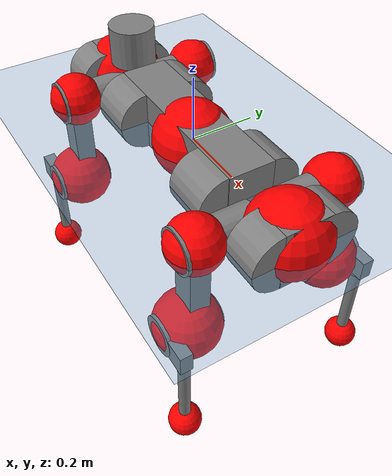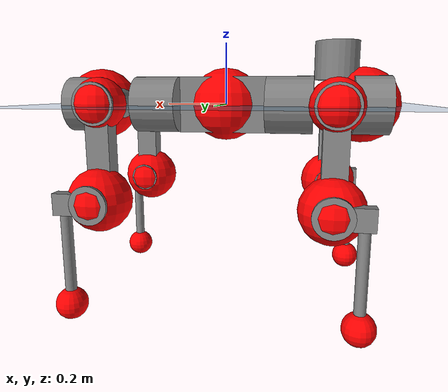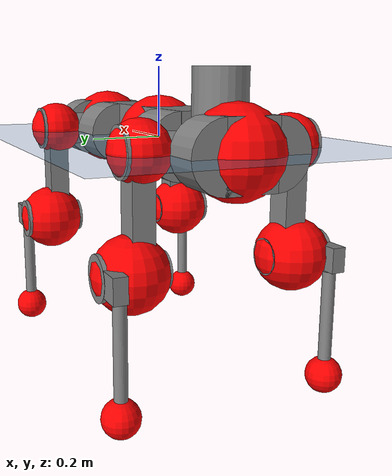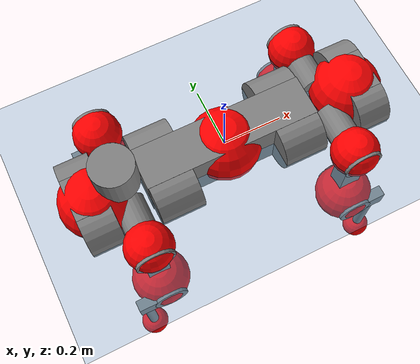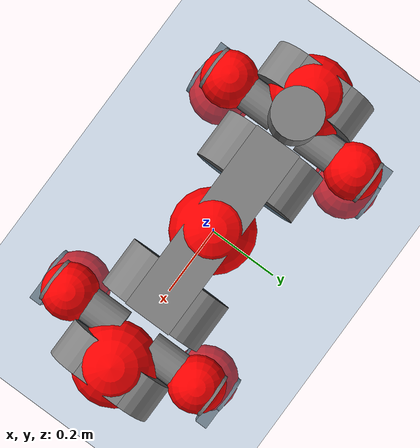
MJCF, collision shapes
<mujoco model="anymal_c">
  <compiler angle="radian" assetdir="assets" balanceinertia="true" inertiafromgeom="false"/>

  <option timestep="0.005" density="1.2" viscosity="2e-05"/>

  <size nkey="1"/>

  <visual>
    <quality shadowsize="8192"/>
    <map shadowclip="0.5"/>
  </visual>

  <default>
    <default class="/">
      <material specular="0" shininess="0.25"/>
      <geom contype="0" conaffinity="0" group="1" solref="-1000 -80"/>
      <site size="0.01 0.005 0.005" group="5"/>
      <general forcelimited="true" forcerange="-80 80" biastype="affine" gainprm="80" biasprm="0 -80 -2"/>
      <default class="anymal_c">
        <joint armature="0.01" damping="0.01" frictionloss="0.1"/>
        <default class="visual">
          <geom type="mesh" group="2"/>
          <default class="visual_zflip"/>
        </default>
        <default class="collision">
          <geom type="cylinder" group="3"/>
          <default class="foot">
            <geom size="0.03 0 0" type="sphere" condim="6" priority="1" friction="0.8 0.02 0.01" solimp="0.015 1 0.03"/>
          </default>
        </default>
      </default>
      <default class="reward_collision_sphere">
        <geom group="5" rgba="1 0 0 1"/>
      </default>
    </default>
  </default>

  <asset>
    <texture type="skybox" colorspace="auto" name="//unnamed_texture_0" builtin="gradient" rgb1="0.95 0.95 0.95" rgb2="0.95 0.95 0.95" width="100" height="600"/>
    <texture type="2d" colorspace="auto" name="texplane" builtin="checker" rgb1="0.345 0.575 0.748" rgb2="0.345 0.575 0.748" markrgb="1 1 1" width="512" height="512"/>
    <texture type="2d" colorspace="linear" name="base" file="base.png"/>
    <texture type="2d" colorspace="linear" name="top_shell" file="top_shell.png"/>
    <texture type="2d" colorspace="linear" name="bottom_shell" file="bottom_shell.png"/>
    <texture type="2d" colorspace="linear" name="remote" file="remote.png"/>
    <texture type="2d" colorspace="linear" name="hatch" file="hatch.png"/>
    <texture type="2d" colorspace="linear" name="handle" file="handle.png"/>
    <texture type="2d" colorspace="linear" name="face" file="face.png"/>
    <texture type="2d" colorspace="linear" name="battery" file="battery.png"/>
    <texture type="2d" colorspace="linear" name="lidar_cage" file="lidar_cage.png"/>
    <texture type="2d" colorspace="linear" name="depth_camera" file="depth_camera.png"/>
    <texture type="2d" colorspace="linear" name="wide_angle_camera" file="wide_angle_camera.png"/>
    <texture type="2d" colorspace="linear" name="lidar" file="lidar.png"/>
    <texture type="2d" colorspace="linear" name="drive" file="drive.png"/>
    <texture type="2d" colorspace="linear" name="hip_l" file="hip_l.png"/>
    <texture type="2d" colorspace="linear" name="shank_l" file="shank_l.png"/>
    <texture type="2d" colorspace="linear" name="foot" file="foot.png"/>
    <texture type="2d" colorspace="linear" name="thigh" file="thigh.png"/>
    <texture type="2d" colorspace="linear" name="shank_r" file="shank_r.png"/>
    <texture type="2d" colorspace="linear" name="hip_r" file="hip_r.png"/>
    <material name="MatPlane" class="/" texture="texplane" texuniform="true" texrepeat="2 2" specular="0.9" shininess="0.5"/>
    <material name="black_plastic" class="/" rgba="0.007 0.007 0.007 1"/>
    <material name="green" class="/" rgba="0.052 0.178 0.033 1"/>
    <material name="red" class="/" rgba="0.178 0.006 0.005 1"/>
    <material name="yellow" class="/" rgba="0.178 0.119 0.006 1"/>
    <material name="lwl" class="/" rgba="0.8 0.8 0.8 1"/>
    <material name="base" class="/" texture="base"/>
    <material name="top_shell" class="/" texture="top_shell"/>
    <material name="bottom_shell" class="/" texture="bottom_shell"/>
    <material name="hip_l" class="/" texture="hip_l"/>
    <material name="thigh" class="/" texture="thigh"/>
    <material name="shank_l" class="/" texture="shank_l"/>
    <material name="foot" class="/" texture="foot"/>
    <material name="hip_r" class="/" texture="hip_r"/>
    <material name="shank" class="/" texture="shank_r"/>
    <material name="hatch" class="/" texture="hatch"/>
    <material name="remote" class="/" texture="remote"/>
    <material name="handle" class="/" texture="handle"/>
    <material name="face" class="/" texture="face"/>
    <material name="depth_camera" class="/" texture="depth_camera"/>
    <material name="wide_angle_camera" class="/" texture="wide_angle_camera"/>
    <material name="battery" class="/" texture="battery"/>
    <material name="lidar_cage" class="/" texture="lidar_cage"/>
    <material name="lidar" class="/" texture="lidar"/>
    <material name="drive" class="/" texture="drive"/>
    <mesh name="base_0" class="/" file="base_0.obj"/>
    <mesh name="base_1" class="/" file="base_1.obj"/>
    <mesh name="base_2" class="/" file="base_2.obj"/>
    <mesh name="base_3" class="/" file="base_3.obj"/>
    <mesh name="base_4" class="/" file="base_4.obj"/>
    <mesh name="base_5" class="/" file="base_5.obj"/>
    <mesh name="top_shell" class="/" file="top_shell.obj"/>
    <mesh name="bottom_shell" class="/" file="bottom_shell.obj"/>
    <mesh name="remote" class="/" file="remote.obj"/>
    <mesh name="handle" class="/" file="handle.obj"/>
    <mesh name="face" class="/" file="face.obj"/>
    <mesh name="wide_angle_camera" class="/" file="wide_angle_camera.obj"/>
    <mesh name="depth_camera" class="/" file="depth_camera.obj"/>
    <mesh name="battery" class="/" file="battery.obj"/>
    <mesh name="lidar_cage" class="/" file="lidar_cage.obj"/>
    <mesh name="lidar" class="/" file="lidar.obj"/>
    <mesh name="drive" class="/" file="drive.obj"/>
    <mesh name="hip_l" class="/" file="hip_l.obj"/>
    <mesh name="thigh" class="/" file="thigh.obj"/>
    <mesh name="shank_l" class="/" file="shank_l.obj"/>
    <mesh name="foot" class="/" file="foot.obj"/>
    <mesh name="hip_r" class="/" file="hip_r.obj"/>
    <mesh name="hatch" class="/" file="hatch.obj"/>
    <mesh name="shank_r" class="/" file="shank_r.obj"/>
  </asset>

  <worldbody>
    <geom name="floor" class="/" size="100 100 0.125" type="plane" group="0" material="MatPlane"/>
    <light name="toplight_shadow" class="/" pos="0 0 5" dir="0.0990148 0.0990148 -0.990148" type="directional" ambient="0.04 0.04 0.04" diffuse="0.55 0.55 0.55" specular="0.12 0.12 0.12"/>
    <light name="toplight_fill" class="/" pos="0 0 5" dir="0.0990148 0.0990148 -0.990148" type="directional" castshadow="false" ambient="0.04 0.04 0.04" diffuse="0.3 0.3 0.3" specular="0.08 0.08 0.08"/>
    <body name="trunk" childclass="anymal_c" pos="9.60343e-07 -0.00154913 0.000513159" quat="1 9.99731e-06 -1.50543e-05 -1.87241e-05">
      <inertial pos="0.00135809 -0.00199604 0.0520752" quat="0.507127 0.493392 0.493394 0.505913" mass="18.4698" diaginertia="0.584535 0.538448 0.254242"/>
      <joint name="//unnamed_joint_0" type="free" armature="0" damping="0" frictionloss="0"/>
      <geom name="//unnamed_geom_1" class="visual" material="green" mesh="base_0"/>
      <geom name="//unnamed_geom_2" class="visual" material="yellow" mesh="base_1"/>
      <geom name="//unnamed_geom_3" class="visual" material="red" mesh="base_2"/>
      <geom name="//unnamed_geom_4" class="visual" material="black_plastic" mesh="base_3"/>
      <geom name="//unnamed_geom_5" class="visual" material="lwl" mesh="base_4"/>
      <geom name="//unnamed_geom_6" class="visual" material="base" mesh="base_5"/>
      <geom name="trunk_1" class="collision" size="0.289495 0.0698782 0.0898434" type="box"/>
      <geom name="trunk_2" class="collision" size="0.0898434 0.0723738" pos="0.214389 0.0680251 0" quat="0.707107 0 0.707107 0"/>
      <geom name="trunk_3" class="collision" size="0.0898434 0.0723738" pos="-0.214389 0.0680251 0" quat="0.707107 0 0.707107 0"/>
      <geom name="trunk_4" class="collision" size="0.0898434 0.0723738" pos="0.214389 -0.0680251 0" quat="0.707107 0 0.707107 0"/>
      <geom name="trunk_5" class="collision" size="0.0898434 0.0723738" pos="-0.214389 -0.0680251 0" quat="0.707107 0 0.707107 0"/>
      <geom name="//unnamed_geom_12" class="visual" material="top_shell" mesh="top_shell"/>
      <geom name="//unnamed_geom_13" class="visual" material="bottom_shell" mesh="bottom_shell"/>
      <geom name="//unnamed_geom_14" class="visual" material="remote" mesh="remote"/>
      <geom name="//unnamed_geom_15" class="visual" material="handle" mesh="handle"/>
      <geom name="//unnamed_geom_16" class="visual" pos="0.408571 0 0" quat="1 0 0 0" material="face" mesh="face"/>
      <geom name="trunk_6" class="collision" size="0.0549043 0.0698782 0.0898434" pos="0.462784 0 0" type="box"/>
      <geom name="//unnamed_geom_18" class="collision" size="0.0898434 0.0549043" pos="0.462784 0.0680251 0" quat="0.707107 0 0.707107 0"/>
      <geom name="//unnamed_geom_19" class="collision" size="0.0898434 0.0549043" pos="0.462784 -0.0680251 0" quat="0.707107 0 0.707107 0"/>
      <geom name="//unnamed_geom_20" class="visual" pos="0.455049 0 -0.0306812" quat="0.965926 0 0.258819 0" material="depth_camera" mesh="depth_camera"/>
      <geom name="//unnamed_geom_21" class="visual" pos="0.505662 0 0.0155283" material="wide_angle_camera" mesh="wide_angle_camera"/>
      <geom name="//unnamed_geom_22" class="visual_zflip" pos="-0.408571 0 0" quat="0 0 0 1" material="face" mesh="face"/>
      <geom name="trunk_7" class="collision" size="0.0549043 0.0698782 0.0898434" pos="-0.462784 0 0" quat="0 0 0 1" type="box"/>
      <geom name="//unnamed_geom_24" class="collision" size="0.0898434 0.0549043" pos="-0.462784 -0.0680251 0" quat="0 -0.707107 0 0.707107"/>
      <geom name="//unnamed_geom_25" class="collision" size="0.0898434 0.0549043" pos="-0.462784 0.0680251 0" quat="0 -0.707107 0 0.707107"/>
      <geom name="//unnamed_geom_26" class="visual" pos="-0.455049 0 -0.0306812" quat="0 -0.258819 0 0.965926" material="depth_camera" mesh="depth_camera"/>
      <geom name="//unnamed_geom_27" class="visual_zflip" pos="-0.505662 0 0.0155283" quat="0 0 0 1" material="wide_angle_camera" mesh="wide_angle_camera"/>
      <geom name="//unnamed_geom_28" class="visual" material="battery" mesh="battery"/>
      <geom name="//unnamed_geom_29" class="visual" pos="0 0.0741225 0.0297413" quat="0.683013 -0.183013 0.183013 0.683013" material="depth_camera" mesh="depth_camera"/>
      <geom name="//unnamed_geom_30" class="visual" pos="0 -0.0741225 0.0297413" quat="0.683013 0.183013 0.183013 -0.683013" material="depth_camera" mesh="depth_camera"/>
      <geom name="//unnamed_geom_31" class="visual" pos="-0.358793 0 0.0762413" quat="1 0 0 0" material="lidar_cage" mesh="lidar_cage"/>
      <geom name="trunk_8" class="collision" size="0.0698782 0.0598956" pos="-0.358793 0 0.138479"/>
      <geom name="//unnamed_geom_33" class="visual" pos="-0.358793 -5.46458e-06 0.147504" quat="0.707107 0 0 -0.707107" material="lidar" mesh="lidar"/>
      <geom name="//unnamed_geom_34" class="visual" pos="0.29561 0.101089 -1.13004e-09" quat="0.258819 0.965926 0 0" material="drive" mesh="drive"/>
      <geom name="//unnamed_geom_35" class="visual" pos="0.29561 -0.101089 1.13004e-09" quat="0.258819 -0.965926 0 0" material="drive" mesh="drive"/>
      <geom name="//unnamed_geom_36" class="visual" pos="-0.29561 0.101089 1.13004e-09" quat="0 0 0.965926 -0.258819" material="drive" mesh="drive"/>
      <geom name="//unnamed_geom_37" class="visual" pos="-0.29561 -0.101089 -1.13004e-09" quat="0 0 -0.965926 -0.258819" material="drive" mesh="drive"/>
      <geom name="//unnamed_geom_38" class="visual" pos="0.114341 0 0.0757226" quat="1 0 0 0" material="hatch" mesh="hatch"/>
      <geom name="//unnamed_geom_39" class="reward_collision_sphere" size="0.119791"/>
      <geom name="//unnamed_geom_40" class="reward_collision_sphere" size="0.119791" pos="0.443563 0 0"/>
      <geom name="//unnamed_geom_41" class="reward_collision_sphere" size="0.119791" pos="-0.443563 0 0"/>
      <site name="imu" pos="0.252209 0.0087374 0.0402968" size="0.0099826"/>
      <camera name="track" pos="0 -1.94357 0" quat="0.707107 0.707107 0 0" mode="trackcom"/>
      <camera name="ego_camera" pos="0.443563 0 -0.0414918" quat="-0.5 -0.5 0.5 0.5"/>
      <body name="LF_HIP" pos="0.296882 0.104214 0.00235627" quat="0.258827 0.965923 -0.000758114 -0.000159643">
        <inertial pos="0.0558891 -0.014518 -0.00892028" quat="-0.127755 0.71044 -0.133399 0.679086" mass="2.71454" diaginertia="0.00544246 0.00416241 0.0039761"/>
        <joint name="LF_HAA" pos="0 0 0" axis="0.999999 -0.00106648 0.000630894" range="-0.667329 0.483207" armature="0.00971046" damping="0.000396935" frictionloss="0.103937"/>
        <geom name="//unnamed_geom_42" class="visual" pos="0 -6.64751e-05 1.09185e-05" quat="0.258819 -0.965926 0 0" material="hip_l" mesh="hip_l"/>
        <geom name="//unnamed_geom_43" class="visual" pos="0.0590432 -0.0713836 -0.0416979" quat="0.183013 -0.683013 0.683013 0.183013" material="drive" mesh="drive"/>
        <geom name="//unnamed_geom_44" class="collision" size="0.049913 0.0698782" pos="0.0590432 -0.0116224 -0.00716253" quat="-0.353553 -0.612372 0.612372 -0.353553"/>
        <body name="LF_THIGH" pos="0.0594618 -0.0684496 -0.0432517" quat="0.182976 -0.683422 0.682713 0.182639">
          <inertial pos="0.0317444 0.000423823 -0.254918" quat="0.992305 -0.00667379 -0.0797233 0.0944966" mass="3.05432" diaginertia="0.0284353 0.0259786 0.00511383"/>
          <joint name="LF_HFE" pos="0 0 0" axis="0.999966 -0.00614058 -0.00556929" range="-3.15487 3.18657" armature="0.0108914" damping="0.00321644" frictionloss="0.0951662"/>
          <geom name="//unnamed_geom_45" class="visual" pos="0.00027674 4.36077e-07 0" quat="0.707107 0 0 -0.707107" material="thigh" mesh="thigh"/>
          <geom name="//unnamed_geom_46" class="collision" size="0.0648869 0.0399304" pos="0.0394279 0 0" quat="0.5 0.5 -0.5 -0.5"/>
          <geom name="//unnamed_geom_47" class="collision" size="0.0374347 0.0299478 0.141068" pos="0.0295709 0 -0.146584" quat="0.707107 0 0 -0.707107" type="box"/>
          <geom name="//unnamed_geom_48" class="visual" pos="0.0988654 0 -0.295629" quat="1 0 0 0" material="drive" mesh="drive"/>
          <geom name="//unnamed_geom_49" class="collision" size="0.049913 0.0698782" pos="0.0298666 0 -0.295629" quat="0.707107 0 0.707107 0"/>
          <geom name="//unnamed_geom_50" class="reward_collision_sphere" size="0.0798608" pos="0.0246424 0 0"/>
          <body name="LF_SHANK" pos="0.100441 -0.00265237 -0.295487" quat="1 -3.58096e-05 6.66311e-06 -4.19776e-05">
            <inertial pos="0.0060825 -0.0595356 -0.0862637" quat="0.992908 -0.116085 -0.00098642 -0.0256155" mass="0.583138" diaginertia="0.00927629 0.00824644 0.00130033"/>
            <joint name="LF_KFE" pos="0 0 0" axis="1 -0.000886502 -0.00037497" stiffness="0.000222502" range="-3.19147 3.1332" armature="0.00975615" damping="0.00975599" frictionloss="0.0991031"/>
            <geom name="//unnamed_geom_51" class="visual" pos="9.02388e-05 0.000481158 0" quat="0.707107 0 0 -0.707107" material="shank_l" mesh="shank_l"/>
            <geom name="LF_kfe_act" class="collision" size="0.0598956 0.0199652" pos="0.0197139 0 0" quat="0.5 0.5 -0.5 -0.5"/>
            <geom name="//unnamed_geom_53" class="collision" size="0.0573989 0.0336913 0.0189669" pos="0.0197139 -0.0558768 0" quat="0.5 0.5 -0.5 -0.5" type="box"/>
            <geom name="//unnamed_geom_54" class="visual" pos="0.0128633 -0.0853136 -0.350575" quat="0.382683 0 0 -0.92388" material="foot" mesh="foot"/>
            <geom name="LF_calf" class="collision" size="0.0174695 0.141006" pos="0.0128633 -0.0854687 -0.175288" quat="0.707107 0 0 -0.707107"/>
            <geom name="LF_foot" class="foot" size="0.0302389" pos="0.0128633 -0.0854687 -0.327236" quat="0.707107 0 0 -0.707107"/>
            <geom name="//unnamed_geom_57" class="reward_collision_sphere" size="0.099826" pos="-0.0492848 0 0"/>
            <geom name="//unnamed_geom_58" class="reward_collision_sphere" size="0.049913" pos="0.0128633 -0.0854687 -0.327236"/>
            <site name="LF_foot" class="foot" pos="0.0128633 -0.0854687 -0.327236" quat="0.707107 0 0 -0.707107" size="0.0099826"/>
          </body>
        </body>
      </body>
      <body name="RF_HIP" pos="0.296581 -0.101985 0.00117247" quat="0.258719 -0.965953 3.81173e-05 0.000112272">
        <inertial pos="0.0569951 0.0142781 -0.00953248" quat="0.133833 0.678243 0.129755 0.710801" mass="2.70994" diaginertia="0.00556071 0.00415299 0.00406275"/>
        <joint name="RF_HAA" pos="0 0 0" axis="0.999982 0.00160426 -0.00577058" range="-0.496829 0.724991" armature="0.00943304" damping="0.00419372" frictionloss="0.0947829"/>
        <geom name="//unnamed_geom_59" class="visual" pos="0 6.64745e-05 1.09184e-05" quat="0.258819 0.965926 0 0" material="hip_r" mesh="hip_r"/>
        <geom name="//unnamed_geom_60" class="visual" pos="0.0590432 0.0713836 -0.0416979" quat="0.183013 0.683013 0.683013 -0.183013" material="drive" mesh="drive"/>
        <geom name="//unnamed_geom_61" class="collision" size="0.049913 0.0698782" pos="0.0590432 0.0116224 -0.00716253" quat="-0.353553 0.612372 0.612372 0.353553"/>
        <body name="RF_THIGH" pos="0.0617273 0.0730612 -0.043694" quat="0.183039 0.683034 0.682966 -0.18308">
          <inertial pos="0.0308513 -0.00262737 -0.255082" quat="0.992736 -0.00556143 -0.0821244 0.0877438" mass="3.16956" diaginertia="0.0290068 0.0265551 0.00520133"/>
          <joint name="RF_HFE" pos="0 0 0" axis="0.999994 -0.00177484 -0.00285213" range="-3.19201 3.13719" armature="0.010186" damping="0.00507153" frictionloss="0.100209"/>
          <geom name="//unnamed_geom_62" class="visual" pos="0.00027674 4.36077e-07 0" quat="0.707107 0 0 -0.707107" material="thigh" mesh="thigh"/>
          <geom name="//unnamed_geom_63" class="collision" size="0.0648869 0.0399304" pos="0.0394279 0 0" quat="0.5 0.5 0.5 0.5"/>
          <geom name="//unnamed_geom_64" class="collision" size="0.0374347 0.0299478 0.141068" pos="0.0295709 0 -0.146584" quat="0.707107 0 0 0.707107" type="box"/>
          <geom name="//unnamed_geom_65" class="visual" pos="0.0988654 0 -0.295629" quat="1 0 0 0" material="drive" mesh="drive"/>
          <geom name="//unnamed_geom_66" class="collision" size="0.049913 0.0698782" pos="0.0298666 0 -0.295629" quat="0.707107 0 0.707107 0"/>
          <geom name="//unnamed_geom_67" class="reward_collision_sphere" size="0.0798608" pos="0.0246424 0 0"/>
          <body name="RF_SHANK" pos="0.0964197 2.95984e-05 -0.296197" quat="0.999999 0.00023628 0.00104047 2.51389e-05">
            <inertial pos="0.00469943 0.0597454 -0.0824565" quat="0.993103 0.11482 -0.00186233 0.0236442" mass="0.589304" diaginertia="0.00936795 0.00803061 0.00132667"/>
            <joint name="RF_KFE" pos="0 0 0" axis="0.999903 0.0105094 0.00912446" range="-3.14973 3.13223" armature="0.0111436" damping="0.021579" frictionloss="0.0896805"/>
            <geom name="//unnamed_geom_68" class="visual" pos="9.02383e-05 -0.000481157 0" quat="0.707107 0 0 0.707107" material="shank" mesh="shank_r"/>
            <geom name="RF_kfe_act" class="collision" size="0.0598956 0.0199652" pos="0.0197139 0 0" quat="0.5 0.5 0.5 0.5"/>
            <geom name="//unnamed_geom_70" class="collision" size="0.0573989 0.0336913 0.0189669" pos="0.0197139 0.0558768 0" quat="0.5 0.5 0.5 0.5" type="box"/>
            <geom name="//unnamed_geom_71" class="visual" pos="0.0128634 0.0853136 -0.350575" quat="0.382683 0 0 0.92388" material="foot" mesh="foot"/>
            <geom name="RF_calf" class="collision" size="0.0174695 0.141006" pos="0.0128633 0.0854687 -0.175288" quat="0.707107 0 0 0.707107"/>
            <geom name="RF_foot" class="foot" size="0.028861" pos="0.0128633 0.0854687 -0.327236" quat="0.707107 0 0 0.707107"/>
            <geom name="//unnamed_geom_74" class="reward_collision_sphere" size="0.099826" pos="-0.0492848 0 0"/>
            <geom name="//unnamed_geom_75" class="reward_collision_sphere" size="0.049913" pos="0.0128633 0.0854687 -0.327236"/>
            <site name="RF_foot" class="foot" pos="0.0128633 0.0854687 -0.327236" quat="0.707107 0 0 0.707107" size="0.0099826"/>
          </body>
        </body>
      </body>
      <body name="LH_HIP" pos="-0.295678 0.100644 -0.00131752" quat="3.41968e-06 0.000500504 0.96591 -0.258877">
        <inertial pos="0.0556631 0.0127649 -0.00872372" quat="0.13737 0.676904 0.124442 0.712351" mass="2.70393" diaginertia="0.0054145 0.00421908 0.00392224"/>
        <joint name="LH_HAA" pos="0 0 0" axis="0.999987 0.00507582 0.000139065" stiffness="0.00199815" range="-0.50652 0.739312" armature="0.0100727" damping="0.0128119" frictionloss="0.0971932"/>
        <geom name="//unnamed_geom_76" class="visual" pos="0 6.64745e-05 1.09184e-05" quat="-0.258819 -0.965926 0 0" material="hip_r" mesh="hip_r"/>
        <geom name="//unnamed_geom_77" class="visual" pos="0.0590432 0.0713836 -0.0416979" quat="0.183013 0.683013 0.683013 -0.183013" material="drive" mesh="drive"/>
        <geom name="//unnamed_geom_78" class="collision" size="0.049913 0.0698782" pos="0.0590432 0.0116224 -0.00716253" quat="-0.353553 0.612372 0.612372 0.353553"/>
        <body name="LH_THIGH" pos="0.0574712 0.0700487 -0.0454429" quat="0.182881 0.683134 0.682987 -0.182788">
          <inertial pos="0.0302002 -0.000341578 -0.25715" quat="0.992869 -0.00464901 -0.0798748 0.0883731" mass="3.11571" diaginertia="0.0281466 0.0253527 0.00493291"/>
          <joint name="LH_HFE" pos="0 0 0" axis="1 -0.000273696 -4.21384e-06" range="-3.1752 3.14865" armature="0.0103842" damping="0" frictionloss="0.0974517"/>
          <geom name="//unnamed_geom_79" class="visual" pos="0.00027674 4.36077e-07 0" quat="0.707107 0 0 -0.707107" material="thigh" mesh="thigh"/>
          <geom name="//unnamed_geom_80" class="collision" size="0.0648869 0.0399304" pos="0.0394279 0 0" quat="0.5 0.5 -0.5 -0.5"/>
          <geom name="//unnamed_geom_81" class="collision" size="0.0374347 0.0299478 0.141068" pos="0.0295709 0 -0.146584" quat="0.707107 0 0 -0.707107" type="box"/>
          <geom name="//unnamed_geom_82" class="visual" pos="0.0988654 0 -0.295629" quat="1 0 0 0" material="drive" mesh="drive"/>
          <geom name="//unnamed_geom_83" class="collision" size="0.049913 0.0698782" pos="0.0298666 0 -0.295629" quat="0.707107 0 0.707107 0"/>
          <geom name="//unnamed_geom_84" class="reward_collision_sphere" size="0.0798608" pos="0.0246424 0 0"/>
          <body name="LH_SHANK" pos="0.0982163 -0.00272132 -0.297245" quat="1 -2.3127e-07 -0.000287272 -5.83648e-05">
            <inertial pos="0.00486741 0.059467 -0.0834291" quat="0.992903 0.116564 -0.00198521 0.0235052" mass="0.59105" diaginertia="0.00974992 0.00799254 0.00135012"/>
            <joint name="LH_KFE" pos="0 0 0" axis="0.999934 -0.000588898 -0.0115003" range="-3.09371 3.11092" armature="0.010034" damping="0.0102909" frictionloss="0.101158"/>
            <geom name="//unnamed_geom_85" class="visual" pos="9.02383e-05 -0.000481157 0" quat="-0.707107 0 0 -0.707107" material="shank" mesh="shank_r"/>
            <geom name="LH_kfe_act" class="collision" size="0.0598956 0.0199652" pos="0.0197139 0 0" quat="0.5 0.5 -0.5 -0.5"/>
            <geom name="//unnamed_geom_87" class="collision" size="0.0573989 0.0336913 0.0189669" pos="0.0197139 0.0558768 0" quat="0.5 0.5 -0.5 -0.5" type="box"/>
            <geom name="//unnamed_geom_88" class="visual" pos="0.0128634 0.0853136 -0.350575" quat="-0.382683 0 0 -0.92388" material="foot" mesh="foot"/>
            <geom name="LH_calf" class="collision" size="0.0174695 0.141006" pos="0.0128633 0.0854687 -0.175288" quat="0.707107 0 0 -0.707107"/>
            <geom name="LH_foot" class="foot" size="0.0306417" pos="0.0128633 0.0854687 -0.327236" quat="0.707107 0 0 -0.707107"/>
            <geom name="//unnamed_geom_91" class="reward_collision_sphere" size="0.099826" pos="-0.0492848 0 0"/>
            <geom name="//unnamed_geom_92" class="reward_collision_sphere" size="0.049913" pos="0.0128633 0.0854687 -0.327236"/>
            <site name="LH_foot" class="foot" pos="0.0128633 0.0854687 -0.327236" quat="0.707107 0 0 -0.707107" size="0.0099826"/>
          </body>
        </body>
      </body>
      <body name="RH_HIP" pos="-0.296549 -0.0998103 0.00110138" quat="0.000744704 -5.53229e-05 -0.966022 -0.258459">
        <inertial pos="0.0548827 -0.0129723 -0.00962146" quat="-0.127636 0.706938 -0.137604 0.681918" mass="2.78381" diaginertia="0.00555702 0.00422048 0.00407756"/>
        <joint name="RH_HAA" pos="0 0 0" axis="0.999955 -0.00946931 0.000850051" range="-0.724771 0.445509" armature="0.0100439" damping="0.0130135" frictionloss="0.101822"/>
        <geom name="//unnamed_geom_93" class="visual" pos="0 -6.64751e-05 1.09185e-05" quat="-0.258819 0.965926 0 0" material="hip_l" mesh="hip_l"/>
        <geom name="//unnamed_geom_94" class="visual" pos="0.0590432 -0.0713836 -0.0416979" quat="-0.183013 0.683013 -0.683013 -0.183013" material="drive" mesh="drive"/>
        <geom name="//unnamed_geom_95" class="collision" size="0.049913 0.0698782" pos="0.0590432 -0.0116224 -0.00716253" quat="0.353553 0.612372 -0.612372 0.353553"/>
        <body name="RH_THIGH" pos="0.0593743 -0.0689734 -0.0436611" quat="-0.182748 0.683753 -0.682189 -0.183584">
          <inertial pos="0.0304651 -0.00238429 -0.254227" quat="0.993185 -0.00586767 -0.0778608 0.0865292" mass="3.0558" diaginertia="0.0282172 0.0258537 0.00500909"/>
          <joint name="RH_HFE" pos="0 0 0" axis="0.999938 0.0105528 0.00346095" range="-3.15029 3.14955" armature="0.00971723" damping="0.00953557" frictionloss="0.0979065"/>
          <geom name="//unnamed_geom_96" class="visual" pos="0.00027674 4.36077e-07 0" quat="0.707107 0 0 -0.707107" material="thigh" mesh="thigh"/>
          <geom name="//unnamed_geom_97" class="collision" size="0.0648869 0.0399304" pos="0.0394279 0 0" quat="0.5 0.5 0.5 0.5"/>
          <geom name="//unnamed_geom_98" class="collision" size="0.0374347 0.0299478 0.141068" pos="0.0295709 0 -0.146584" quat="0.707107 0 0 0.707107" type="box"/>
          <geom name="//unnamed_geom_99" class="visual" pos="0.0988654 0 -0.295629" quat="1 0 0 0" material="drive" mesh="drive"/>
          <geom name="//unnamed_geom_100" class="collision" size="0.049913 0.0698782" pos="0.0298666 0 -0.295629" quat="0.707107 0 0.707107 0"/>
          <geom name="//unnamed_geom_101" class="reward_collision_sphere" size="0.0798608" pos="0.0246424 0 0"/>
          <body name="RH_SHANK" pos="0.0957977 -0.000323225 -0.29544" quat="1 -0.00030235 -0.000219833 -1.42422e-05">
            <inertial pos="0.00806538 -0.0593737 -0.0826829" quat="0.993169 -0.113031 -0.000645634 -0.0289687" mass="0.578978" diaginertia="0.00969338 0.00807713 0.0013282"/>
            <joint name="RH_KFE" pos="0 0 0" axis="0.999979 0.0064455 0.000688803" range="-3.15979 3.18342" armature="0.00884914" damping="0.00833442" frictionloss="0.098135"/>
            <geom name="//unnamed_geom_102" class="visual" pos="9.02388e-05 0.000481158 0" quat="0.707107 0 0 -0.707107" material="shank_l" mesh="shank_l"/>
            <geom name="RH_kfe_act" class="collision" size="0.0598956 0.0199652" pos="0.0197139 0 0" quat="0.5 0.5 0.5 0.5"/>
            <geom name="//unnamed_geom_104" class="collision" size="0.0573989 0.0336913 0.0189669" pos="0.0197139 -0.0558768 0" quat="0.5 0.5 0.5 0.5" type="box"/>
            <geom name="//unnamed_geom_105" class="visual" pos="0.0128633 -0.0853136 -0.350575" quat="0.382683 0 0 -0.92388" material="foot" mesh="foot"/>
            <geom name="RH_calf" class="collision" size="0.0174695 0.141006" pos="0.0128633 -0.0854687 -0.175288" quat="0.707107 0 0 0.707107"/>
            <geom name="RH_foot" class="foot" size="0.0294788" pos="0.0128633 -0.0854687 -0.327236" quat="0.707107 0 0 0.707107"/>
            <geom name="//unnamed_geom_108" class="reward_collision_sphere" size="0.099826" pos="-0.0492848 0 0"/>
            <geom name="//unnamed_geom_109" class="reward_collision_sphere" size="0.049913" pos="0.0128633 -0.0854687 -0.327236"/>
            <site name="RH_foot" class="foot" pos="0.0128633 -0.0854687 -0.327236" quat="0.707107 0 0 0.707107" size="0.0099826"/>
          </body>
        </body>
      </body>
    </body>
  </worldbody>

  <contact>
    <pair class="/" geom1="floor" geom2="LF_foot" name="//unnamed_contact_0"/>
    <pair class="/" geom1="floor" geom2="RF_foot" name="//unnamed_contact_1"/>
    <pair class="/" geom1="floor" geom2="LH_foot" name="//unnamed_contact_2"/>
    <pair class="/" geom1="floor" geom2="RH_foot" name="//unnamed_contact_3"/>
  </contact>

  <actuator>
    <general name="LF_HAA" class="/" joint="LF_HAA" forcerange="-88.126 88.126" gainprm="84.3478" biasprm="0 -84.3478 -1.99144"/>
    <general name="LF_HFE" class="/" joint="LF_HFE" forcerange="-78.4628 78.4628" gainprm="84.3478" biasprm="0 -84.3478 -1.99144"/>
    <general name="LF_KFE" class="/" joint="LF_KFE" forcerange="-82.5029 82.5029" gainprm="84.3478" biasprm="0 -84.3478 -1.99144"/>
    <general name="RF_HAA" class="/" joint="RF_HAA" forcerange="-87.8452 87.8452" gainprm="84.3478" biasprm="0 -84.3478 -1.99144"/>
    <general name="RF_HFE" class="/" joint="RF_HFE" forcerange="-88.8483 88.8483" gainprm="84.3478" biasprm="0 -84.3478 -1.99144"/>
    <general name="RF_KFE" class="/" joint="RF_KFE" forcerange="-83.0838 83.0838" gainprm="84.3478" biasprm="0 -84.3478 -1.99144"/>
    <general name="LH_HAA" class="/" joint="LH_HAA" forcerange="-81.0476 81.0476" gainprm="84.3478" biasprm="0 -84.3478 -1.99144"/>
    <general name="LH_HFE" class="/" joint="LH_HFE" forcerange="-78.106 78.106" gainprm="84.3478" biasprm="0 -84.3478 -1.99144"/>
    <general name="LH_KFE" class="/" joint="LH_KFE" forcerange="-81.6639 81.6639" gainprm="84.3478" biasprm="0 -84.3478 -1.99144"/>
    <general name="RH_HAA" class="/" joint="RH_HAA" forcerange="-72.7001 72.7001" gainprm="84.3478" biasprm="0 -84.3478 -1.99144"/>
    <general name="RH_HFE" class="/" joint="RH_HFE" forcerange="-79.7888 79.7888" gainprm="84.3478" biasprm="0 -84.3478 -1.99144"/>
    <general name="RH_KFE" class="/" joint="RH_KFE" forcerange="-80.0498 80.0498" gainprm="84.3478" biasprm="0 -84.3478 -1.99144"/>
  </actuator>

  <sensor>
    <gyro site="imu" name="imu_angular_velocity"/>
    <velocimeter site="imu" name="imu_linear_velocity"/>
    <framelinvel objtype="site" objname="LF_foot" name="LF_foot_global_linear_velocity"/>
    <framelinvel objtype="site" objname="RF_foot" name="RF_foot_global_linear_velocity"/>
    <framelinvel objtype="site" objname="LH_foot" name="LH_foot_global_linear_velocity"/>
    <framelinvel objtype="site" objname="RH_foot" name="RH_foot_global_linear_velocity"/>
  </sensor>

  <keyframe>
    <key name="home" qpos="0 0 0.55 1 0 0 0 0 0.4 -0.8 0 -0.4 0.8 0 -0.4 0.8 0 0.4 -0.8"/>
  </keyframe>
</mujoco>
